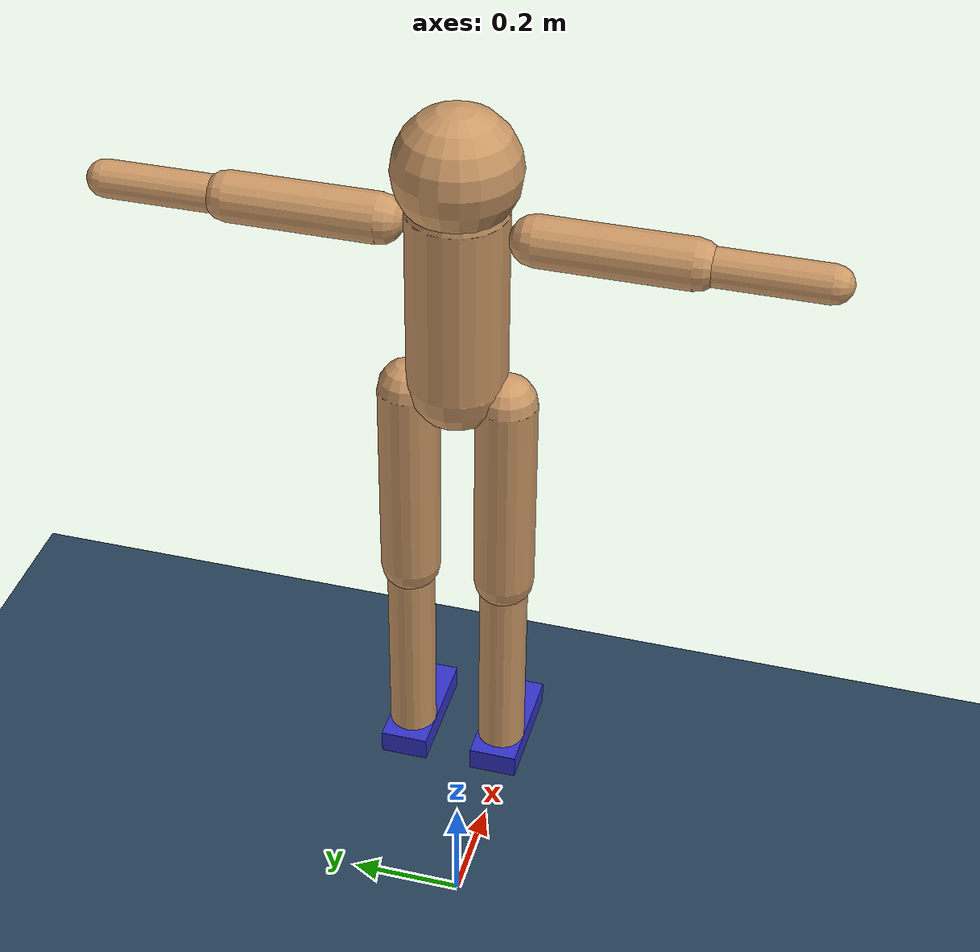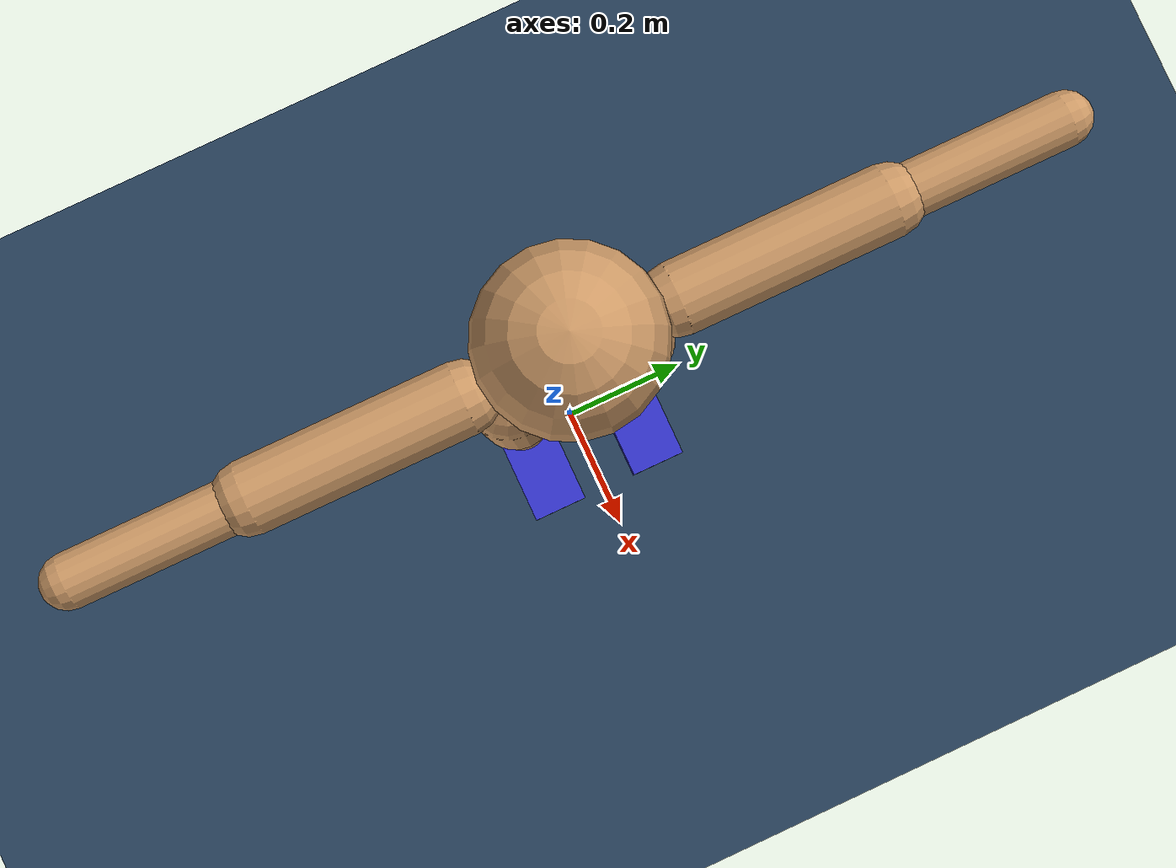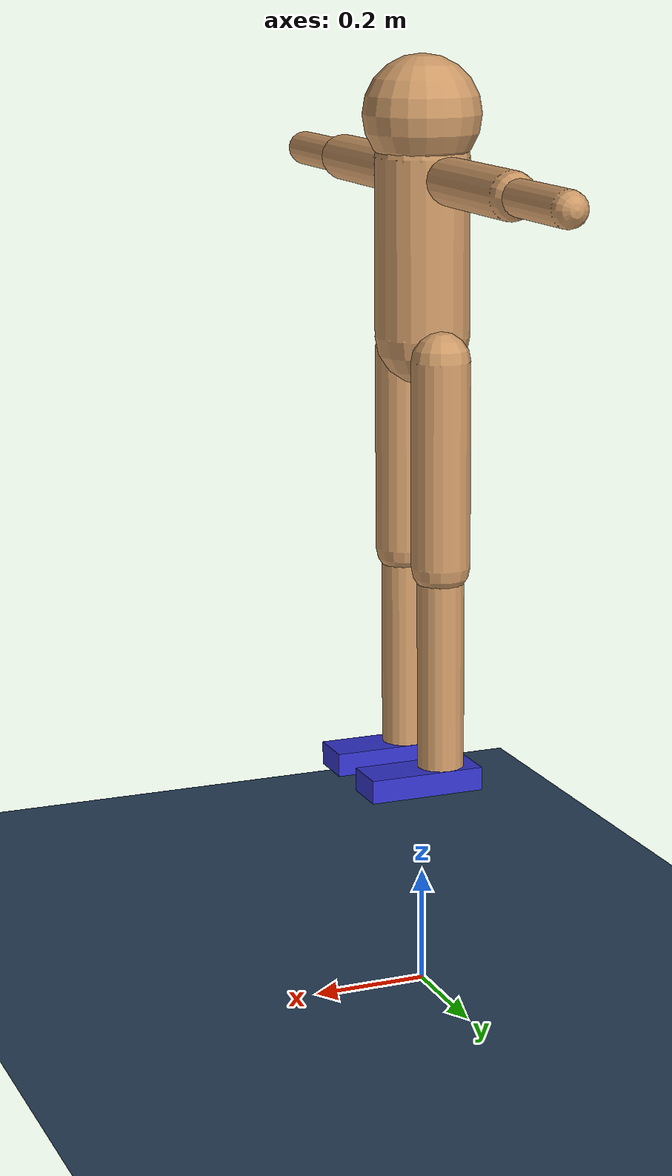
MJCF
<mujoco model="humanoid_walk">
  <compiler angle="degree" inertiafromgeom="true"/>

  <option timestep="0.002" integrator="RK4">
    <flag contact="enable"/>
  </option>

  <default>
    <joint limited="true" damping="1.0" armature="0.01"/>
    <geom condim="3" friction="1.0 0.5 0.5" margin="0.001"/>
    <motor ctrllimited="true" ctrlrange="-1 1" gear="100"/>
  </default>

  <asset>
    <texture type="skybox" builtin="gradient" rgb1="0.3 0.5 0.7" rgb2="0.0 0.0 0.0" width="512" height="3072"/>
    <texture type="2d" name="groundplane" builtin="checker" rgb1="0.2 0.3 0.4" rgb2="0.1 0.2 0.3" width="512" height="512" mark="edge" markrgb="0.8 0.8 0.8"/>
    <material name="groundplane" texture="groundplane" texrepeat="5 5" texuniform="true" reflectance="0.2"/>
    <material name="body_mat" rgba="0.8 0.6 0.4 1"/>
    <material name="joint_mat" rgba="0.2 0.2 0.8 1"/>
  </asset>

  <worldbody>
    <!-- Ground plane -->
    <geom name="floor" type="plane" size="50 50 0.1" material="groundplane" conaffinity="1" condim="3"/>

    <light name="spotlight" pos="0 -1 3" dir="0 0.3 -1" diffuse="0.8 0.8 0.8" specular="0.3 0.3 0.3"/>

    <!-- Humanoid -->
    <body name="torso" pos="0 0 1.3">
      <camera name="track_cam" pos="0 -3 1.5" xyaxes="1 0 0 0 0.5 1" mode="trackcom"/>
      <freejoint name="root"/>
      <site name="torso_imu" pos="0 0 0" size="0.01"/>
      <geom name="torso_geom" type="capsule" fromto="0 0 -0.15 0 0 0.15" size="0.08" mass="10" material="body_mat"/>

      <!-- Head -->
      <body name="head" pos="0 0 0.22">
        <geom name="head_geom" type="sphere" size="0.1" mass="1" material="body_mat"/>
      </body>

      <!-- === Right Arm === -->
      <body name="right_upper_arm" pos="0 -0.12 0.12">
        <joint name="right_shoulder_x" type="hinge" axis="1 0 0" range="-90 90" damping="2"/>
        <joint name="right_shoulder_z" type="hinge" axis="0 0 1" range="-60 60" damping="2"/>
        <geom name="right_upper_arm_geom" type="capsule" fromto="0 0 0 0 -0.24 0" size="0.04" mass="1.5" material="body_mat"/>
        <body name="right_forearm" pos="0 -0.24 0">
          <joint name="right_elbow" type="hinge" axis="1 0 0" range="-120 0" damping="1"/>
          <geom name="right_forearm_geom" type="capsule" fromto="0 0 0 0 -0.2 0" size="0.03" mass="1" material="body_mat"/>
        </body>
      </body>

      <!-- === Left Arm === -->
      <body name="left_upper_arm" pos="0 0.12 0.12">
        <joint name="left_shoulder_x" type="hinge" axis="1 0 0" range="-90 90" damping="2"/>
        <joint name="left_shoulder_z" type="hinge" axis="0 0 1" range="-60 60" damping="2"/>
        <geom name="left_upper_arm_geom" type="capsule" fromto="0 0 0 0 0.24 0" size="0.04" mass="1.5" material="body_mat"/>
        <body name="left_forearm" pos="0 0.24 0">
          <joint name="left_elbow" type="hinge" axis="1 0 0" range="-120 0" damping="1"/>
          <geom name="left_forearm_geom" type="capsule" fromto="0 0 0 0 0.2 0" size="0.03" mass="1" material="body_mat"/>
        </body>
      </body>

      <!-- === Right Leg === -->
      <body name="right_thigh" pos="0 -0.08 -0.18">
        <joint name="right_hip_x" type="hinge" axis="1 0 0" range="-30 120" damping="3"/>
        <joint name="right_hip_y" type="hinge" axis="0 1 0" range="-30 30" damping="3"/>
        <joint name="right_hip_z" type="hinge" axis="0 0 1" range="-45 45" damping="3"/>
        <geom name="right_thigh_geom" type="capsule" fromto="0 0 0 0 0 -0.35" size="0.05" mass="4" material="body_mat"/>
        <body name="right_shin" pos="0 0 -0.35">
          <joint name="right_knee" type="hinge" axis="0 1 0" range="-150 0" damping="2"/>
          <geom name="right_shin_geom" type="capsule" fromto="0 0 0 0 0 -0.35" size="0.04" mass="3" material="body_mat"/>
          <body name="right_foot" pos="0 0 -0.35">
            <joint name="right_ankle_x" type="hinge" axis="1 0 0" range="-30 30" damping="1"/>
            <joint name="right_ankle_y" type="hinge" axis="0 1 0" range="-45 45" damping="1"/>
            <site name="right_foot_site" pos="0.04 0 -0.04" size="0.01"/>
            <geom name="right_foot_geom" type="box" size="0.1 0.04 0.02" pos="0.04 0 -0.02" mass="1" material="joint_mat"/>
          </body>
        </body>
      </body>

      <!-- === Left Leg === -->
      <body name="left_thigh" pos="0 0.08 -0.18">
        <joint name="left_hip_x" type="hinge" axis="1 0 0" range="-30 120" damping="3"/>
        <joint name="left_hip_y" type="hinge" axis="0 1 0" range="-30 30" damping="3"/>
        <joint name="left_hip_z" type="hinge" axis="0 0 1" range="-45 45" damping="3"/>
        <geom name="left_thigh_geom" type="capsule" fromto="0 0 0 0 0 -0.35" size="0.05" mass="4" material="body_mat"/>
        <body name="left_shin" pos="0 0 -0.35">
          <joint name="left_knee" type="hinge" axis="0 1 0" range="-150 0" damping="2"/>
          <geom name="left_shin_geom" type="capsule" fromto="0 0 0 0 0 -0.35" size="0.04" mass="3" material="body_mat"/>
          <body name="left_foot" pos="0 0 -0.35">
            <joint name="left_ankle_x" type="hinge" axis="1 0 0" range="-30 30" damping="1"/>
            <joint name="left_ankle_y" type="hinge" axis="0 1 0" range="-45 45" damping="1"/>
            <site name="left_foot_site" pos="0.04 0 -0.04" size="0.01"/>
            <geom name="left_foot_geom" type="box" size="0.1 0.04 0.02" pos="0.04 0 -0.02" mass="1" material="joint_mat"/>
          </body>
        </body>
      </body>
    </body>
  </worldbody>

  <!-- Actuators: one per joint (21 DoF) -->
  <actuator>
    <!-- Right Arm -->
    <motor joint="right_shoulder_x" name="right_shoulder_x_motor"/>
    <motor joint="right_shoulder_z" name="right_shoulder_z_motor"/>
    <motor joint="right_elbow" name="right_elbow_motor"/>
    <!-- Left Arm -->
    <motor joint="left_shoulder_x" name="left_shoulder_x_motor"/>
    <motor joint="left_shoulder_z" name="left_shoulder_z_motor"/>
    <motor joint="left_elbow" name="left_elbow_motor"/>
    <!-- Right Leg -->
    <motor joint="right_hip_x" name="right_hip_x_motor"/>
    <motor joint="right_hip_y" name="right_hip_y_motor"/>
    <motor joint="right_hip_z" name="right_hip_z_motor"/>
    <motor joint="right_knee" name="right_knee_motor"/>
    <motor joint="right_ankle_x" name="right_ankle_x_motor"/>
    <motor joint="right_ankle_y" name="right_ankle_y_motor"/>
    <!-- Left Leg -->
    <motor joint="left_hip_x" name="left_hip_x_motor"/>
    <motor joint="left_hip_y" name="left_hip_y_motor"/>
    <motor joint="left_hip_z" name="left_hip_z_motor"/>
    <motor joint="left_knee" name="left_knee_motor"/>
    <motor joint="left_ankle_x" name="left_ankle_x_motor"/>
    <motor joint="left_ankle_y" name="left_ankle_y_motor"/>
  </actuator>

  <sensor>
    <!-- Foot contact sensors -->
    <touch name="right_foot_touch" site="right_foot_site"/>
    <touch name="left_foot_touch" site="left_foot_site"/>
    <!-- IMU on torso -->
    <gyro name="torso_gyro" site="torso_imu"/>
    <accelerometer name="torso_accel" site="torso_imu"/>
  </sensor>

  <!-- Sensor sites need to be inside the bodies (added via worldbody sites) -->
</mujoco>
